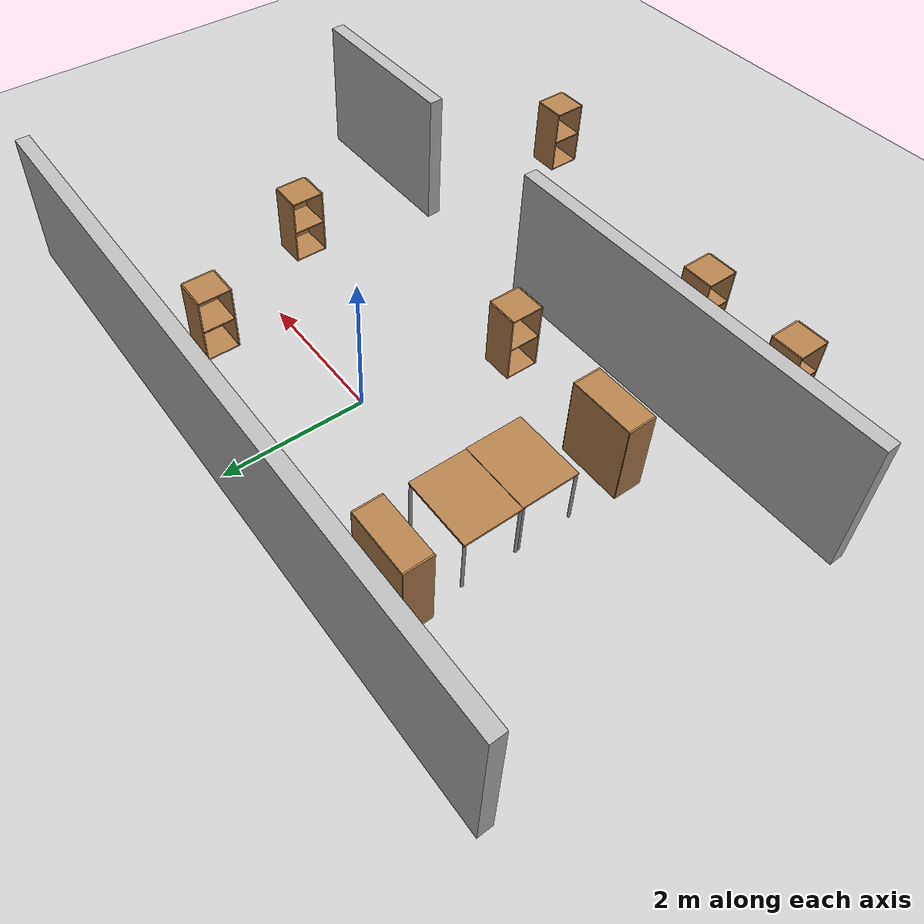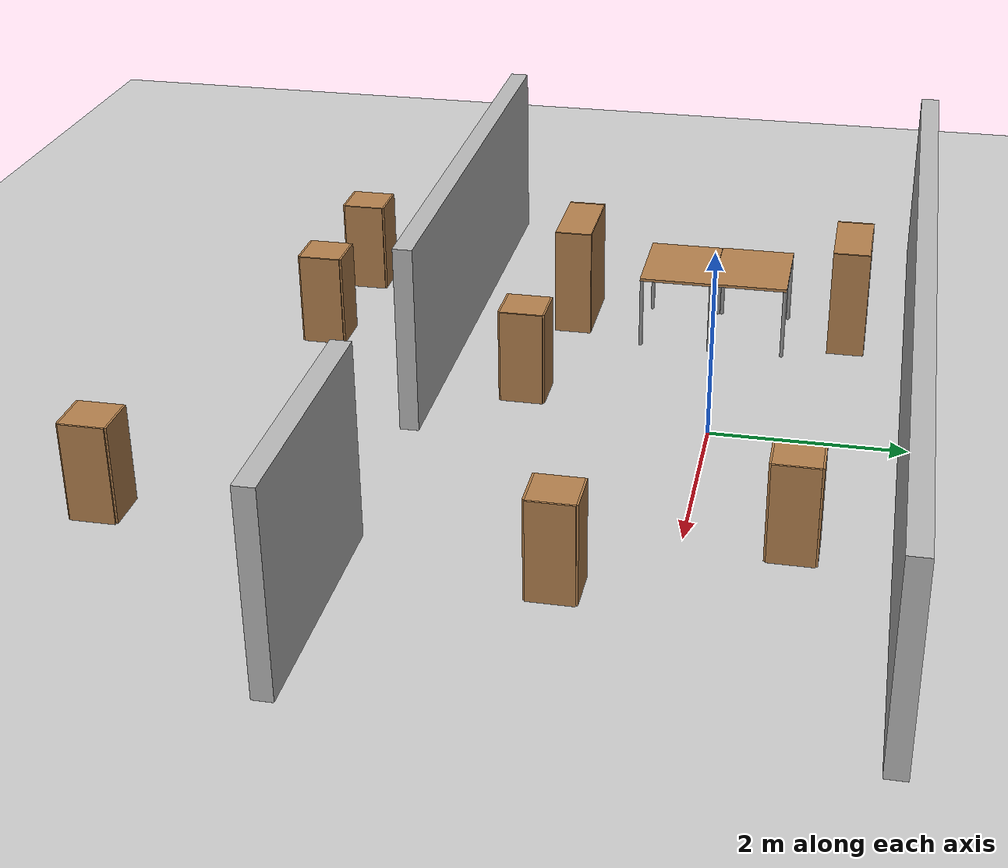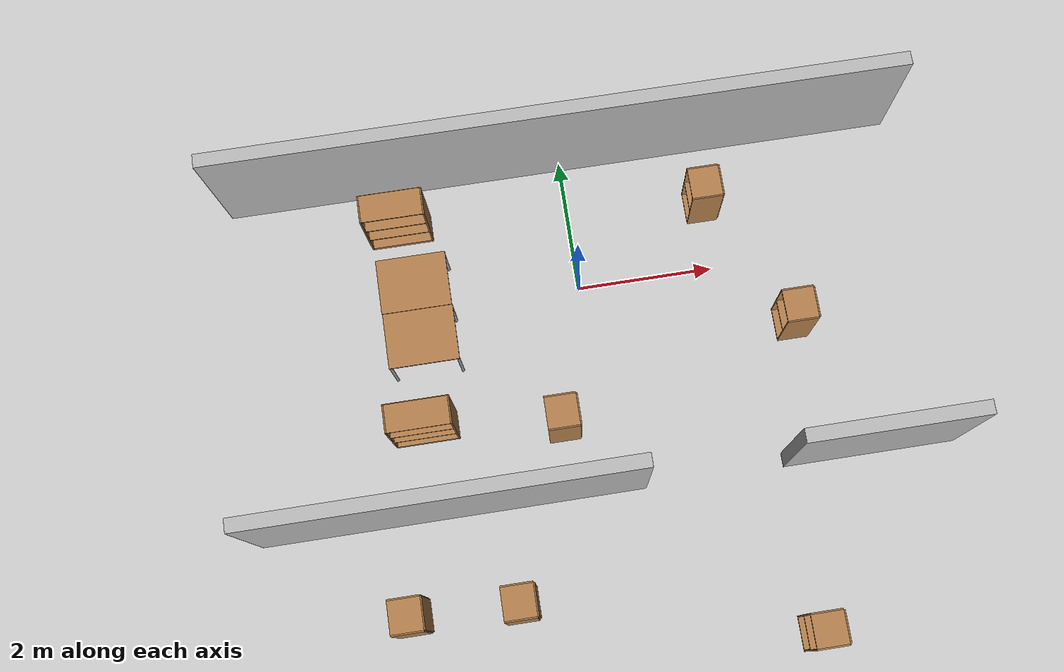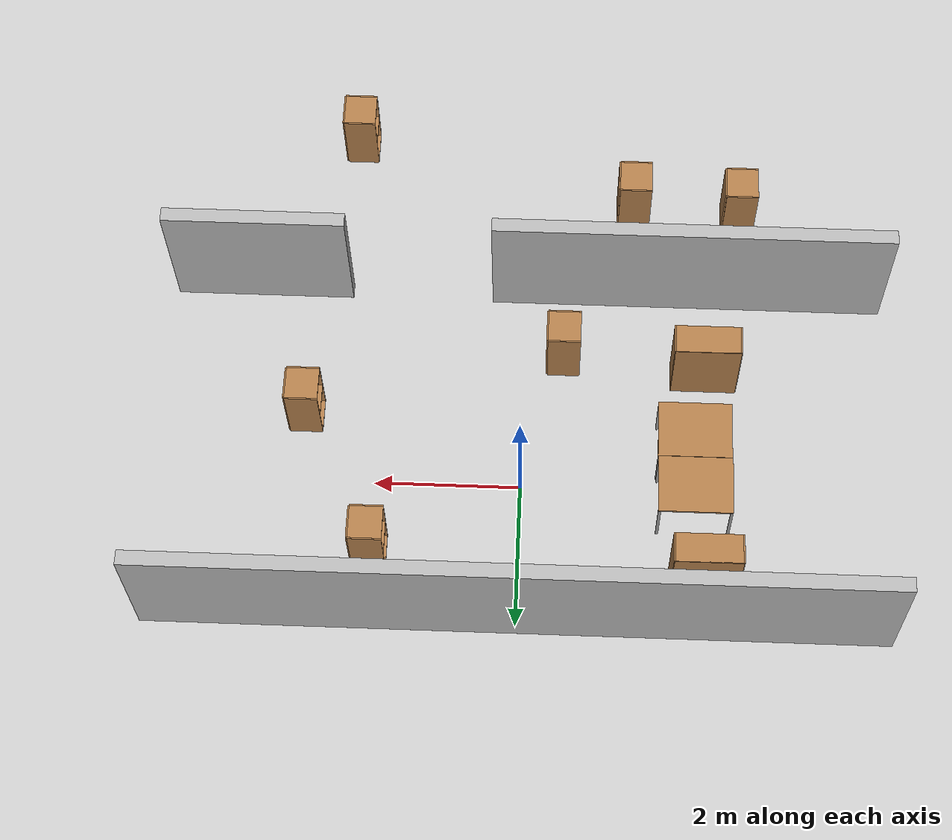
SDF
<sdf version="1.6">
 <world name="default">
  <model name="ground_plane">
   <static>1</static>
   <link name="link">
    <collision name="collision">
     <geometry><plane><normal>0 0 1</normal><size>100 100</size></plane></geometry>
     <surface><friction><ode><mu>100</mu><mu2>50</mu2></ode></friction></surface>
    </collision>
    <visual name="visual">
     <cast_shadows>0</cast_shadows>
     <geometry><plane><normal>0 0 1</normal><size>100 100</size></plane></geometry>
     <material>
      <script><uri>file://media/materials/scripts/gazebo.material</uri><name>Gazebo/Grey</name></script>
     </material>
    </visual>
    <velocity_decay><linear>0</linear><angular>0</angular></velocity_decay>
   </link>
  </model>
  <model name="wall_2_model">
   <pose>0 2 1 0 -0 0</pose>
   <static>1</static>
   <link name="wall_2_body">
    <inertial>
     <mass>1</mass>
     <inertia><ixx>1</ixx><ixy>0</ixy><ixz>0</ixz><iyy>1</iyy><iyz>0</iyz><izz>1</izz></inertia>
    </inertial>
    <collision name="collision"><geometry><box><size>10 0.2 2</size></box></geometry></collision>
    <visual name="visual"><geometry><box><size>10 0.2 2</size></box></geometry></visual>
    <velocity_decay><linear>0</linear><angular>0</angular></velocity_decay>
   </link>
  </model>
  <model name="wall_5_model">
   <pose>-2.25 -3 1 0 -0 0</pose>
   <static>1</static>
   <link name="wall_5_body">
    <inertial>
     <mass>1</mass>
     <inertia><ixx>1</ixx><ixy>0</ixy><ixz>0</ixz><iyy>1</iyy><iyz>0</iyz><izz>1</izz></inertia>
    </inertial>
    <collision name="collision"><geometry><box><size>5.5 0.2 2</size></box></geometry></collision>
    <visual name="visual"><geometry><box><size>5.5 0.2 2</size></box></geometry></visual>
    <velocity_decay><linear>0</linear><angular>0</angular></velocity_decay>
   </link>
  </model>
  <model name="wall_6_model">
   <pose>3.75 -3 1 0 -0 0</pose>
   <static>1</static>
   <link name="wall_6_body">
    <inertial>
     <mass>1</mass>
     <inertia><ixx>1</ixx><ixy>0</ixy><ixz>0</ixz><iyy>1</iyy><iyz>0</iyz><izz>1</izz></inertia>
    </inertial>
    <collision name="collision"><geometry><box><size>2.5 0.2 2</size></box></geometry></collision>
    <visual name="visual"><geometry><box><size>2.5 0.2 2</size></box></geometry></visual>
    <velocity_decay><linear>0</linear><angular>0</angular></velocity_decay>
   </link>
  </model>
  <model name="cabinet">
   <static>1</static>
   <link name="cabinet_bottom_plate">
    <inertial>
     <pose>0 0 -1 0 -0 0</pose>
     <inertia><ixx>2.05</ixx><ixy>0</ixy><ixz>0</ixz><iyy>2.05</iyy><iyz>0</iyz><izz>2.05</izz></inertia>
     <mass>25</mass>
    </inertial>
    <collision name="cabinet_bottom_plate_geom">
     <pose>0 0 0.01 0 -0 0</pose>
     <geometry><box><size>0.45 0.45 0.02</size></box></geometry>
    </collision>
    <visual name="cabinet_bottom_plate_geom_visual">
     <pose>0 0 0.01 0 -0 0</pose>
     <geometry><box><size>0.45 0.45 0.02</size></box></geometry>
     <material>
      <script><uri>file://media/materials/scripts/gazebo.material</uri><name>Gazebo/Wood</name></script>
     </material>
    </visual>
    <collision name="cabinet_bottom_plate_geom_cabinet_back_plate">
     <pose>0.235 0 0.51 0 -0 0</pose>
     <geometry><box><size>0.02 0.45 1.02</size></box></geometry>
    </collision>
    <visual name="cabinet_bottom_plate_geom_cabinet_back_plate_visual">
     <pose>0.235 0 0.51 0 -0 0</pose>
     <geometry><box><size>0.02 0.45 1.02</size></box></geometry>
     <material>
      <script><uri>file://media/materials/scripts/gazebo.material</uri><name>Gazebo/Wood</name></script>
     </material>
    </visual>
    <collision name="cabinet_bottom_plate_geom_cabinet_left_plate">
     <pose>0 0.235 0.51 0 -0 0</pose>
     <geometry><box><size>0.45 0.02 1.02</size></box></geometry>
    </collision>
    <visual name="cabinet_bottom_plate_geom_cabinet_left_plate_visual">
     <pose>0 0.235 0.51 0 -0 0</pose>
     <geometry><box><size>0.45 0.02 1.02</size></box></geometry>
     <material>
      <script><uri>file://media/materials/scripts/gazebo.material</uri><name>Gazebo/Wood</name></script>
     </material>
    </visual>
    <collision name="cabinet_bottom_plate_geom_cabinet_middle_plate">
     <pose>0 0 0.51 0 -0 0</pose>
     <geometry><box><size>0.45 0.45 0.02</size></box></geometry>
    </collision>
    <visual name="cabinet_bottom_plate_geom_cabinet_middle_plate_visual">
     <pose>0 0 0.51 0 -0 0</pose>
     <geometry><box><size>0.45 0.45 0.02</size></box></geometry>
     <material>
      <script><uri>file://media/materials/scripts/gazebo.material</uri><name>Gazebo/Wood</name></script>
     </material>
    </visual>
    <collision name="cabinet_bottom_plate_geom_cabinet_right_plate">
     <pose>0 -0.235 0.51 0 -0 0</pose>
     <geometry><box><size>0.45 0.02 1.02</size></box></geometry>
    </collision>
    <visual name="cabinet_bottom_plate_geom_cabinet_right_plate_visual">
     <pose>0 -0.235 0.51 0 -0 0</pose>
     <geometry><box><size>0.45 0.02 1.02</size></box></geometry>
     <material>
      <script><uri>file://media/materials/scripts/gazebo.material</uri><name>Gazebo/Wood</name></script>
     </material>
    </visual>
    <collision name="cabinet_bottom_plate_geom_cabinet_top_plate">
     <pose>0 0 1.01 0 -0 0</pose>
     <geometry><box><size>0.45 0.45 0.02</size></box></geometry>
    </collision>
    <visual name="cabinet_bottom_plate_geom_cabinet_top_plate_visual">
     <pose>0 0 1.01 0 -0 0</pose>
     <geometry><box><size>0.45 0.45 0.02</size></box></geometry>
     <material>
      <script><uri>file://media/materials/scripts/gazebo.material</uri><name>Gazebo/Wood</name></script>
     </material>
    </visual>
    <velocity_decay><linear>0</linear><angular>0</angular></velocity_decay>
   </link>
   <pose>2 1 0 0 -0 0</pose>
  </model>
  <model name="cabinet_0">
   <static>1</static>
   <link name="cabinet_bottom_plate">
    <inertial>
     <pose>0 0 -1 0 -0 0</pose>
     <inertia><ixx>2.05</ixx><ixy>0</ixy><ixz>0</ixz><iyy>2.05</iyy><iyz>0</iyz><izz>2.05</izz></inertia>
     <mass>25</mass>
    </inertial>
    <collision name="cabinet_bottom_plate_geom">
     <pose>0 0 0.01 0 -0 0</pose>
     <geometry><box><size>0.45 0.45 0.02</size></box></geometry>
    </collision>
    <visual name="cabinet_bottom_plate_geom_visual">
     <pose>0 0 0.01 0 -0 0</pose>
     <geometry><box><size>0.45 0.45 0.02</size></box></geometry>
     <material>
      <script><uri>file://media/materials/scripts/gazebo.material</uri><name>Gazebo/Wood</name></script>
     </material>
    </visual>
    <collision name="cabinet_bottom_plate_geom_cabinet_back_plate">
     <pose>0.235 0 0.51 0 -0 0</pose>
     <geometry><box><size>0.02 0.45 1.02</size></box></geometry>
    </collision>
    <visual name="cabinet_bottom_plate_geom_cabinet_back_plate_visual">
     <pose>0.235 0 0.51 0 -0 0</pose>
     <geometry><box><size>0.02 0.45 1.02</size></box></geometry>
     <material>
      <script><uri>file://media/materials/scripts/gazebo.material</uri><name>Gazebo/Wood</name></script>
     </material>
    </visual>
    <collision name="cabinet_bottom_plate_geom_cabinet_left_plate">
     <pose>0 0.235 0.51 0 -0 0</pose>
     <geometry><box><size>0.45 0.02 1.02</size></box></geometry>
    </collision>
    <visual name="cabinet_bottom_plate_geom_cabinet_left_plate_visual">
     <pose>0 0.235 0.51 0 -0 0</pose>
     <geometry><box><size>0.45 0.02 1.02</size></box></geometry>
     <material>
      <script><uri>file://media/materials/scripts/gazebo.material</uri><name>Gazebo/Wood</name></script>
     </material>
    </visual>
    <collision name="cabinet_bottom_plate_geom_cabinet_middle_plate">
     <pose>0 0 0.51 0 -0 0</pose>
     <geometry><box><size>0.45 0.45 0.02</size></box></geometry>
    </collision>
    <visual name="cabinet_bottom_plate_geom_cabinet_middle_plate_visual">
     <pose>0 0 0.51 0 -0 0</pose>
     <geometry><box><size>0.45 0.45 0.02</size></box></geometry>
     <material>
      <script><uri>file://media/materials/scripts/gazebo.material</uri><name>Gazebo/Wood</name></script>
     </material>
    </visual>
    <collision name="cabinet_bottom_plate_geom_cabinet_right_plate">
     <pose>0 -0.235 0.51 0 -0 0</pose>
     <geometry><box><size>0.45 0.02 1.02</size></box></geometry>
    </collision>
    <visual name="cabinet_bottom_plate_geom_cabinet_right_plate_visual">
     <pose>0 -0.235 0.51 0 -0 0</pose>
     <geometry><box><size>0.45 0.02 1.02</size></box></geometry>
     <material>
      <script><uri>file://media/materials/scripts/gazebo.material</uri><name>Gazebo/Wood</name></script>
     </material>
    </visual>
    <collision name="cabinet_bottom_plate_geom_cabinet_top_plate">
     <pose>0 0 1.01 0 -0 0</pose>
     <geometry><box><size>0.45 0.45 0.02</size></box></geometry>
    </collision>
    <visual name="cabinet_bottom_plate_geom_cabinet_top_plate_visual">
     <pose>0 0 1.01 0 -0 0</pose>
     <geometry><box><size>0.45 0.45 0.02</size></box></geometry>
     <material>
      <script><uri>file://media/materials/scripts/gazebo.material</uri><name>Gazebo/Wood</name></script>
     </material>
    </visual>
    <velocity_decay><linear>0</linear><angular>0</angular></velocity_decay>
   </link>
   <pose>2.51573 -5.43949 0 0 -0 0</pose>
  </model>
  <model name="bookshelf_0">
   <static>1</static>
   <link name="link">
    <inertial><mass>1</mass></inertial>
    <collision name="back">
     <pose>0 0.005 0.6 0 -0 0</pose>
     <geometry><box><size>0.9 0.01 1.2</size></box></geometry>
    </collision>
    <visual name="visual1">
     <pose>0 0.005 0.6 0 -0 0</pose>
     <geometry><box><size>0.9 0.01 1.2</size></box></geometry>
     <material>
      <script><uri>file://media/materials/scripts/gazebo.material</uri><name>Gazebo/Wood</name></script>
     </material>
    </visual>
    <collision name="left_side">
     <pose>0.45 -0.195 0.6 0 -0 0</pose>
     <geometry><box><size>0.02 0.4 1.2</size></box></geometry>
    </collision>
    <visual name="visual2">
     <pose>0.45 -0.195 0.6 0 -0 0</pose>
     <geometry><box><size>0.02 0.4 1.2</size></box></geometry>
     <material>
      <script><uri>file://media/materials/scripts/gazebo.material</uri><name>Gazebo/Wood</name></script>
     </material>
    </visual>
    <collision name="right_side">
     <pose>-0.45 -0.195 0.6 0 -0 0</pose>
     <geometry><box><size>0.02 0.4 1.2</size></box></geometry>
    </collision>
    <visual name="visual3">
     <pose>-0.45 -0.195 0.6 0 -0 0</pose>
     <geometry><box><size>0.02 0.4 1.2</size></box></geometry>
     <material>
      <script><uri>file://media/materials/scripts/gazebo.material</uri><name>Gazebo/Wood</name></script>
     </material>
    </visual>
    <collision name="bottom">
     <pose>0 -0.195 0.03 0 -0 0</pose>
     <geometry><box><size>0.88 0.4 0.06</size></box></geometry>
    </collision>
    <visual name="visual4">
     <pose>0 -0.195 0.03 0 -0 0</pose>
     <geometry><box><size>0.88 0.4 0.06</size></box></geometry>
     <material>
      <script><uri>file://media/materials/scripts/gazebo.material</uri><name>Gazebo/Wood</name></script>
     </material>
    </visual>
    <collision name="top">
     <pose>0 -0.195 1.19 0 -0 0</pose>
     <geometry><box><size>0.88 0.4 0.02</size></box></geometry>
    </collision>
    <visual name="visual5">
     <pose>0 -0.195 1.19 0 -0 0</pose>
     <geometry><box><size>0.88 0.4 0.02</size></box></geometry>
     <material>
      <script><uri>file://media/materials/scripts/gazebo.material</uri><name>Gazebo/Wood</name></script>
     </material>
    </visual>
    <collision name="low_shelf">
     <pose>0 -0.195 0.43 0 -0 0</pose>
     <geometry><box><size>0.88 0.4 0.02</size></box></geometry>
    </collision>
    <visual name="visual6">
     <pose>0 -0.195 0.43 0 -0 0</pose>
     <geometry><box><size>0.88 0.4 0.02</size></box></geometry>
     <material>
      <script><uri>file://media/materials/scripts/gazebo.material</uri><name>Gazebo/Wood</name></script>
     </material>
    </visual>
    <collision name="high_shelf">
     <pose>0 -0.195 0.8 0 -0 0</pose>
     <geometry><box><size>0.88 0.4 0.02</size></box></geometry>
    </collision>
    <visual name="visual7">
     <pose>0 -0.195 0.8 0 -0 0</pose>
     <geometry><box><size>0.88 0.4 0.02</size></box></geometry>
     <material>
      <script><uri>file://media/materials/scripts/gazebo.material</uri><name>Gazebo/Wood</name></script>
     </material>
    </visual>
    <velocity_decay><linear>0</linear><angular>0</angular></velocity_decay>
   </link>
   <pose>-2.49657 -1.57894 0 0 -0 0</pose>
  </model>
  <model name="bookshelf_1">
   <static>1</static>
   <link name="link">
    <inertial><mass>1</mass></inertial>
    <collision name="back">
     <pose>0 0.005 0.6 0 -0 0</pose>
     <geometry><box><size>0.9 0.01 1.2</size></box></geometry>
    </collision>
    <visual name="visual1">
     <pose>0 0.005 0.6 0 -0 0</pose>
     <geometry><box><size>0.9 0.01 1.2</size></box></geometry>
     <material>
      <script><uri>file://media/materials/scripts/gazebo.material</uri><name>Gazebo/Wood</name></script>
     </material>
    </visual>
    <collision name="left_side">
     <pose>0.45 -0.195 0.6 0 -0 0</pose>
     <geometry><box><size>0.02 0.4 1.2</size></box></geometry>
    </collision>
    <visual name="visual2">
     <pose>0.45 -0.195 0.6 0 -0 0</pose>
     <geometry><box><size>0.02 0.4 1.2</size></box></geometry>
     <material>
      <script><uri>file://media/materials/scripts/gazebo.material</uri><name>Gazebo/Wood</name></script>
     </material>
    </visual>
    <collision name="right_side">
     <pose>-0.45 -0.195 0.6 0 -0 0</pose>
     <geometry><box><size>0.02 0.4 1.2</size></box></geometry>
    </collision>
    <visual name="visual3">
     <pose>-0.45 -0.195 0.6 0 -0 0</pose>
     <geometry><box><size>0.02 0.4 1.2</size></box></geometry>
     <material>
      <script><uri>file://media/materials/scripts/gazebo.material</uri><name>Gazebo/Wood</name></script>
     </material>
    </visual>
    <collision name="bottom">
     <pose>0 -0.195 0.03 0 -0 0</pose>
     <geometry><box><size>0.88 0.4 0.06</size></box></geometry>
    </collision>
    <visual name="visual4">
     <pose>0 -0.195 0.03 0 -0 0</pose>
     <geometry><box><size>0.88 0.4 0.06</size></box></geometry>
     <material>
      <script><uri>file://media/materials/scripts/gazebo.material</uri><name>Gazebo/Wood</name></script>
     </material>
    </visual>
    <collision name="top">
     <pose>0 -0.195 1.19 0 -0 0</pose>
     <geometry><box><size>0.88 0.4 0.02</size></box></geometry>
    </collision>
    <visual name="visual5">
     <pose>0 -0.195 1.19 0 -0 0</pose>
     <geometry><box><size>0.88 0.4 0.02</size></box></geometry>
     <material>
      <script><uri>file://media/materials/scripts/gazebo.material</uri><name>Gazebo/Wood</name></script>
     </material>
    </visual>
    <collision name="low_shelf">
     <pose>0 -0.195 0.43 0 -0 0</pose>
     <geometry><box><size>0.88 0.4 0.02</size></box></geometry>
    </collision>
    <visual name="visual6">
     <pose>0 -0.195 0.43 0 -0 0</pose>
     <geometry><box><size>0.88 0.4 0.02</size></box></geometry>
     <material>
      <script><uri>file://media/materials/scripts/gazebo.material</uri><name>Gazebo/Wood</name></script>
     </material>
    </visual>
    <collision name="high_shelf">
     <pose>0 -0.195 0.8 0 -0 0</pose>
     <geometry><box><size>0.88 0.4 0.02</size></box></geometry>
    </collision>
    <visual name="visual7">
     <pose>0 -0.195 0.8 0 -0 0</pose>
     <geometry><box><size>0.88 0.4 0.02</size></box></geometry>
     <material>
      <script><uri>file://media/materials/scripts/gazebo.material</uri><name>Gazebo/Wood</name></script>
     </material>
    </visual>
    <velocity_decay><linear>0</linear><angular>0</angular></velocity_decay>
   </link>
   <pose>-2.49816 1.46785 0 0 -0 0</pose>
  </model>
  <model name="cabinet_1">
   <static>1</static>
   <link name="cabinet_bottom_plate">
    <inertial>
     <pose>0 0 -1 0 -0 0</pose>
     <inertia><ixx>2.05</ixx><ixy>0</ixy><ixz>0</ixz><iyy>2.05</iyy><iyz>0</iyz><izz>2.05</izz></inertia>
     <mass>25</mass>
    </inertial>
    <collision name="cabinet_bottom_plate_geom">
     <pose>0 0 0.01 0 -0 0</pose>
     <geometry><box><size>0.45 0.45 0.02</size></box></geometry>
    </collision>
    <visual name="cabinet_bottom_plate_geom_visual">
     <pose>0 0 0.01 0 -0 0</pose>
     <geometry><box><size>0.45 0.45 0.02</size></box></geometry>
     <material>
      <script><uri>file://media/materials/scripts/gazebo.material</uri><name>Gazebo/Wood</name></script>
     </material>
    </visual>
    <collision name="cabinet_bottom_plate_geom_cabinet_back_plate">
     <pose>0.235 0 0.51 0 -0 0</pose>
     <geometry><box><size>0.02 0.45 1.02</size></box></geometry>
    </collision>
    <visual name="cabinet_bottom_plate_geom_cabinet_back_plate_visual">
     <pose>0.235 0 0.51 0 -0 0</pose>
     <geometry><box><size>0.02 0.45 1.02</size></box></geometry>
     <material>
      <script><uri>file://media/materials/scripts/gazebo.material</uri><name>Gazebo/Wood</name></script>
     </material>
    </visual>
    <collision name="cabinet_bottom_plate_geom_cabinet_left_plate">
     <pose>0 0.235 0.51 0 -0 0</pose>
     <geometry><box><size>0.45 0.02 1.02</size></box></geometry>
    </collision>
    <visual name="cabinet_bottom_plate_geom_cabinet_left_plate_visual">
     <pose>0 0.235 0.51 0 -0 0</pose>
     <geometry><box><size>0.45 0.02 1.02</size></box></geometry>
     <material>
      <script><uri>file://media/materials/scripts/gazebo.material</uri><name>Gazebo/Wood</name></script>
     </material>
    </visual>
    <collision name="cabinet_bottom_plate_geom_cabinet_middle_plate">
     <pose>0 0 0.51 0 -0 0</pose>
     <geometry><box><size>0.45 0.45 0.02</size></box></geometry>
    </collision>
    <visual name="cabinet_bottom_plate_geom_cabinet_middle_plate_visual">
     <pose>0 0 0.51 0 -0 0</pose>
     <geometry><box><size>0.45 0.45 0.02</size></box></geometry>
     <material>
      <script><uri>file://media/materials/scripts/gazebo.material</uri><name>Gazebo/Wood</name></script>
     </material>
    </visual>
    <collision name="cabinet_bottom_plate_geom_cabinet_right_plate">
     <pose>0 -0.235 0.51 0 -0 0</pose>
     <geometry><box><size>0.45 0.02 1.02</size></box></geometry>
    </collision>
    <visual name="cabinet_bottom_plate_geom_cabinet_right_plate_visual">
     <pose>0 -0.235 0.51 0 -0 0</pose>
     <geometry><box><size>0.45 0.02 1.02</size></box></geometry>
     <material>
      <script><uri>file://media/materials/scripts/gazebo.material</uri><name>Gazebo/Wood</name></script>
     </material>
    </visual>
    <collision name="cabinet_bottom_plate_geom_cabinet_top_plate">
     <pose>0 0 1.01 0 -0 0</pose>
     <geometry><box><size>0.45 0.45 0.02</size></box></geometry>
    </collision>
    <visual name="cabinet_bottom_plate_geom_cabinet_top_plate_visual">
     <pose>0 0 1.01 0 -0 0</pose>
     <geometry><box><size>0.45 0.45 0.02</size></box></geometry>
     <material>
      <script><uri>file://media/materials/scripts/gazebo.material</uri><name>Gazebo/Wood</name></script>
     </material>
    </visual>
    <velocity_decay><linear>0</linear><angular>0</angular></velocity_decay>
   </link>
   <pose>-3 -4.40005 0 0 -0 0</pose>
  </model>
  <model name="cabinet_2">
   <static>1</static>
   <link name="cabinet_bottom_plate">
    <inertial>
     <pose>0 0 -1 0 -0 0</pose>
     <inertia><ixx>2.05</ixx><ixy>0</ixy><ixz>0</ixz><iyy>2.05</iyy><iyz>0</iyz><izz>2.05</izz></inertia>
     <mass>25</mass>
    </inertial>
    <collision name="cabinet_bottom_plate_geom">
     <pose>0 0 0.01 0 -0 0</pose>
     <geometry><box><size>0.45 0.45 0.02</size></box></geometry>
    </collision>
    <visual name="cabinet_bottom_plate_geom_visual">
     <pose>0 0 0.01 0 -0 0</pose>
     <geometry><box><size>0.45 0.45 0.02</size></box></geometry>
     <material>
      <script><uri>file://media/materials/scripts/gazebo.material</uri><name>Gazebo/Wood</name></script>
     </material>
    </visual>
    <collision name="cabinet_bottom_plate_geom_cabinet_back_plate">
     <pose>0.235 0 0.51 0 -0 0</pose>
     <geometry><box><size>0.02 0.45 1.02</size></box></geometry>
    </collision>
    <visual name="cabinet_bottom_plate_geom_cabinet_back_plate_visual">
     <pose>0.235 0 0.51 0 -0 0</pose>
     <geometry><box><size>0.02 0.45 1.02</size></box></geometry>
     <material>
      <script><uri>file://media/materials/scripts/gazebo.material</uri><name>Gazebo/Wood</name></script>
     </material>
    </visual>
    <collision name="cabinet_bottom_plate_geom_cabinet_left_plate">
     <pose>0 0.235 0.51 0 -0 0</pose>
     <geometry><box><size>0.45 0.02 1.02</size></box></geometry>
    </collision>
    <visual name="cabinet_bottom_plate_geom_cabinet_left_plate_visual">
     <pose>0 0.235 0.51 0 -0 0</pose>
     <geometry><box><size>0.45 0.02 1.02</size></box></geometry>
     <material>
      <script><uri>file://media/materials/scripts/gazebo.material</uri><name>Gazebo/Wood</name></script>
     </material>
    </visual>
    <collision name="cabinet_bottom_plate_geom_cabinet_middle_plate">
     <pose>0 0 0.51 0 -0 0</pose>
     <geometry><box><size>0.45 0.45 0.02</size></box></geometry>
    </collision>
    <visual name="cabinet_bottom_plate_geom_cabinet_middle_plate_visual">
     <pose>0 0 0.51 0 -0 0</pose>
     <geometry><box><size>0.45 0.45 0.02</size></box></geometry>
     <material>
      <script><uri>file://media/materials/scripts/gazebo.material</uri><name>Gazebo/Wood</name></script>
     </material>
    </visual>
    <collision name="cabinet_bottom_plate_geom_cabinet_right_plate">
     <pose>0 -0.235 0.51 0 -0 0</pose>
     <geometry><box><size>0.45 0.02 1.02</size></box></geometry>
    </collision>
    <visual name="cabinet_bottom_plate_geom_cabinet_right_plate_visual">
     <pose>0 -0.235 0.51 0 -0 0</pose>
     <geometry><box><size>0.45 0.02 1.02</size></box></geometry>
     <material>
      <script><uri>file://media/materials/scripts/gazebo.material</uri><name>Gazebo/Wood</name></script>
     </material>
    </visual>
    <collision name="cabinet_bottom_plate_geom_cabinet_top_plate">
     <pose>0 0 1.01 0 -0 0</pose>
     <geometry><box><size>0.45 0.45 0.02</size></box></geometry>
    </collision>
    <visual name="cabinet_bottom_plate_geom_cabinet_top_plate_visual">
     <pose>0 0 1.01 0 -0 0</pose>
     <geometry><box><size>0.45 0.45 0.02</size></box></geometry>
     <material>
      <script><uri>file://media/materials/scripts/gazebo.material</uri><name>Gazebo/Wood</name></script>
     </material>
    </visual>
    <velocity_decay><linear>0</linear><angular>0</angular></velocity_decay>
   </link>
   <pose>-1.49183 -4.45622 0 0 -0 0</pose>
  </model>
  <model name="cabinet_3">
   <static>1</static>
   <link name="cabinet_bottom_plate">
    <inertial>
     <pose>0 0 -1 0 -0 0</pose>
     <inertia><ixx>2.05</ixx><ixy>0</ixy><ixz>0</ixz><iyy>2.05</iyy><iyz>0</iyz><izz>2.05</izz></inertia>
     <mass>25</mass>
    </inertial>
    <collision name="cabinet_bottom_plate_geom">
     <pose>0 0 0.01 0 -0 0</pose>
     <geometry><box><size>0.45 0.45 0.02</size></box></geometry>
    </collision>
    <visual name="cabinet_bottom_plate_geom_visual">
     <pose>0 0 0.01 0 -0 0</pose>
     <geometry><box><size>0.45 0.45 0.02</size></box></geometry>
     <material>
      <script><uri>file://media/materials/scripts/gazebo.material</uri><name>Gazebo/Wood</name></script>
     </material>
    </visual>
    <collision name="cabinet_bottom_plate_geom_cabinet_back_plate">
     <pose>0.235 0 0.51 0 -0 0</pose>
     <geometry><box><size>0.02 0.45 1.02</size></box></geometry>
    </collision>
    <visual name="cabinet_bottom_plate_geom_cabinet_back_plate_visual">
     <pose>0.235 0 0.51 0 -0 0</pose>
     <geometry><box><size>0.02 0.45 1.02</size></box></geometry>
     <material>
      <script><uri>file://media/materials/scripts/gazebo.material</uri><name>Gazebo/Wood</name></script>
     </material>
    </visual>
    <collision name="cabinet_bottom_plate_geom_cabinet_left_plate">
     <pose>0 0.235 0.51 0 -0 0</pose>
     <geometry><box><size>0.45 0.02 1.02</size></box></geometry>
    </collision>
    <visual name="cabinet_bottom_plate_geom_cabinet_left_plate_visual">
     <pose>0 0.235 0.51 0 -0 0</pose>
     <geometry><box><size>0.45 0.02 1.02</size></box></geometry>
     <material>
      <script><uri>file://media/materials/scripts/gazebo.material</uri><name>Gazebo/Wood</name></script>
     </material>
    </visual>
    <collision name="cabinet_bottom_plate_geom_cabinet_middle_plate">
     <pose>0 0 0.51 0 -0 0</pose>
     <geometry><box><size>0.45 0.45 0.02</size></box></geometry>
    </collision>
    <visual name="cabinet_bottom_plate_geom_cabinet_middle_plate_visual">
     <pose>0 0 0.51 0 -0 0</pose>
     <geometry><box><size>0.45 0.45 0.02</size></box></geometry>
     <material>
      <script><uri>file://media/materials/scripts/gazebo.material</uri><name>Gazebo/Wood</name></script>
     </material>
    </visual>
    <collision name="cabinet_bottom_plate_geom_cabinet_right_plate">
     <pose>0 -0.235 0.51 0 -0 0</pose>
     <geometry><box><size>0.45 0.02 1.02</size></box></geometry>
    </collision>
    <visual name="cabinet_bottom_plate_geom_cabinet_right_plate_visual">
     <pose>0 -0.235 0.51 0 -0 0</pose>
     <geometry><box><size>0.45 0.02 1.02</size></box></geometry>
     <material>
      <script><uri>file://media/materials/scripts/gazebo.material</uri><name>Gazebo/Wood</name></script>
     </material>
    </visual>
    <collision name="cabinet_bottom_plate_geom_cabinet_top_plate">
     <pose>0 0 1.01 0 -0 0</pose>
     <geometry><box><size>0.45 0.45 0.02</size></box></geometry>
    </collision>
    <visual name="cabinet_bottom_plate_geom_cabinet_top_plate_visual">
     <pose>0 0 1.01 0 -0 0</pose>
     <geometry><box><size>0.45 0.45 0.02</size></box></geometry>
     <material>
      <script><uri>file://media/materials/scripts/gazebo.material</uri><name>Gazebo/Wood</name></script>
     </material>
    </visual>
    <velocity_decay><linear>0</linear><angular>0</angular></velocity_decay>
   </link>
   <pose>3 -1 0 0 -0 0</pose>
  </model>
  <model name="cabinet_4">
   <static>1</static>
   <link name="cabinet_bottom_plate">
    <inertial>
     <pose>0 0 -1 0 -0 0</pose>
     <inertia><ixx>2.05</ixx><ixy>0</ixy><ixz>0</ixz><iyy>2.05</iyy><iyz>0</iyz><izz>2.05</izz></inertia>
     <mass>25</mass>
    </inertial>
    <collision name="cabinet_bottom_plate_geom">
     <pose>0 0 0.01 0 -0 0</pose>
     <geometry><box><size>0.45 0.45 0.02</size></box></geometry>
    </collision>
    <visual name="cabinet_bottom_plate_geom_visual">
     <pose>0 0 0.01 0 -0 0</pose>
     <geometry><box><size>0.45 0.45 0.02</size></box></geometry>
     <material>
      <script><uri>file://media/materials/scripts/gazebo.material</uri><name>Gazebo/Wood</name></script>
     </material>
    </visual>
    <collision name="cabinet_bottom_plate_geom_cabinet_back_plate">
     <pose>0.235 0 0.51 0 -0 0</pose>
     <geometry><box><size>0.02 0.45 1.02</size></box></geometry>
    </collision>
    <visual name="cabinet_bottom_plate_geom_cabinet_back_plate_visual">
     <pose>0.235 0 0.51 0 -0 0</pose>
     <geometry><box><size>0.02 0.45 1.02</size></box></geometry>
     <material>
      <script><uri>file://media/materials/scripts/gazebo.material</uri><name>Gazebo/Wood</name></script>
     </material>
    </visual>
    <collision name="cabinet_bottom_plate_geom_cabinet_left_plate">
     <pose>0 0.235 0.51 0 -0 0</pose>
     <geometry><box><size>0.45 0.02 1.02</size></box></geometry>
    </collision>
    <visual name="cabinet_bottom_plate_geom_cabinet_left_plate_visual">
     <pose>0 0.235 0.51 0 -0 0</pose>
     <geometry><box><size>0.45 0.02 1.02</size></box></geometry>
     <material>
      <script><uri>file://media/materials/scripts/gazebo.material</uri><name>Gazebo/Wood</name></script>
     </material>
    </visual>
    <collision name="cabinet_bottom_plate_geom_cabinet_middle_plate">
     <pose>0 0 0.51 0 -0 0</pose>
     <geometry><box><size>0.45 0.45 0.02</size></box></geometry>
    </collision>
    <visual name="cabinet_bottom_plate_geom_cabinet_middle_plate_visual">
     <pose>0 0 0.51 0 -0 0</pose>
     <geometry><box><size>0.45 0.45 0.02</size></box></geometry>
     <material>
      <script><uri>file://media/materials/scripts/gazebo.material</uri><name>Gazebo/Wood</name></script>
     </material>
    </visual>
    <collision name="cabinet_bottom_plate_geom_cabinet_right_plate">
     <pose>0 -0.235 0.51 0 -0 0</pose>
     <geometry><box><size>0.45 0.02 1.02</size></box></geometry>
    </collision>
    <visual name="cabinet_bottom_plate_geom_cabinet_right_plate_visual">
     <pose>0 -0.235 0.51 0 -0 0</pose>
     <geometry><box><size>0.45 0.02 1.02</size></box></geometry>
     <material>
      <script><uri>file://media/materials/scripts/gazebo.material</uri><name>Gazebo/Wood</name></script>
     </material>
    </visual>
    <collision name="cabinet_bottom_plate_geom_cabinet_top_plate">
     <pose>0 0 1.01 0 -0 0</pose>
     <geometry><box><size>0.45 0.45 0.02</size></box></geometry>
    </collision>
    <visual name="cabinet_bottom_plate_geom_cabinet_top_plate_visual">
     <pose>0 0 1.01 0 -0 0</pose>
     <geometry><box><size>0.45 0.45 0.02</size></box></geometry>
     <material>
      <script><uri>file://media/materials/scripts/gazebo.material</uri><name>Gazebo/Wood</name></script>
     </material>
    </visual>
    <velocity_decay><linear>0</linear><angular>0</angular></velocity_decay>
   </link>
   <pose>-0.537023 -2 0 0 -0 0</pose>
  </model>
  <model name="table_2">
   <static>1</static>
   <link name="link">
    <collision name="surface">
     <pose>0 0 0.8 0 -0 0</pose>
     <geometry><box><size>1 0.8 0.03</size></box></geometry>
    </collision>
    <visual name="visual1">
     <pose>0 0 0.8 0 -0 0</pose>
     <geometry><box><size>1 0.8 0.03</size></box></geometry>
     <material>
      <script><uri>file://media/materials/scripts/gazebo.material</uri><name>Gazebo/Wood</name></script>
     </material>
    </visual>
    <collision name="front_left_leg">
     <pose>0.48 0.38 0.4 0 -0 0</pose>
     <geometry><cylinder><radius>0.02</radius><length>0.8</length></cylinder></geometry>
    </collision>
    <visual name="front_left_leg">
     <pose>0.48 0.38 0.4 0 -0 0</pose>
     <geometry><cylinder><radius>0.02</radius><length>0.8</length></cylinder></geometry>
     <material>
      <script><uri>file://media/materials/scripts/gazebo.material</uri><name>Gazebo/Grey</name></script>
     </material>
    </visual>
    <collision name="front_right_leg">
     <pose>0.48 -0.38 0.4 0 -0 0</pose>
     <geometry><cylinder><radius>0.02</radius><length>0.8</length></cylinder></geometry>
    </collision>
    <visual name="front_right_leg">
     <pose>0.48 -0.38 0.4 0 -0 0</pose>
     <geometry><cylinder><radius>0.02</radius><length>0.8</length></cylinder></geometry>
     <material>
      <script><uri>file://media/materials/scripts/gazebo.material</uri><name>Gazebo/Grey</name></script>
     </material>
    </visual>
    <collision name="back_right_leg">
     <pose>-0.48 -0.38 0.4 0 -0 0</pose>
     <geometry><cylinder><radius>0.02</radius><length>0.8</length></cylinder></geometry>
    </collision>
    <visual name="back_right_leg">
     <pose>-0.48 -0.38 0.4 0 -0 0</pose>
     <geometry><cylinder><radius>0.02</radius><length>0.8</length></cylinder></geometry>
     <material>
      <script><uri>file://media/materials/scripts/gazebo.material</uri><name>Gazebo/Grey</name></script>
     </material>
    </visual>
    <collision name="back_left_leg">
     <pose>-0.48 0.38 0.4 0 -0 0</pose>
     <geometry><cylinder><radius>0.02</radius><length>0.8</length></cylinder></geometry>
    </collision>
    <visual name="back_left_leg">
     <pose>-0.48 0.38 0.4 0 -0 0</pose>
     <geometry><cylinder><radius>0.02</radius><length>0.8</length></cylinder></geometry>
     <material>
      <script><uri>file://media/materials/scripts/gazebo.material</uri><name>Gazebo/Grey</name></script>
     </material>
    </visual>
    <velocity_decay><linear>0</linear><angular>0</angular></velocity_decay>
   </link>
   <pose>-2.3412 -0.593646 0 0 -0 0</pose>
  </model>
  <model name="table_3">
   <static>1</static>
   <link name="link">
    <collision name="surface">
     <pose>0 0 0.8 0 -0 0</pose>
     <geometry><box><size>1 0.8 0.03</size></box></geometry>
    </collision>
    <visual name="visual1">
     <pose>0 0 0.8 0 -0 0</pose>
     <geometry><box><size>1 0.8 0.03</size></box></geometry>
     <material>
      <script><uri>file://media/materials/scripts/gazebo.material</uri><name>Gazebo/Wood</name></script>
     </material>
    </visual>
    <collision name="front_left_leg">
     <pose>0.48 0.38 0.4 0 -0 0</pose>
     <geometry><cylinder><radius>0.02</radius><length>0.8</length></cylinder></geometry>
    </collision>
    <visual name="front_left_leg">
     <pose>0.48 0.38 0.4 0 -0 0</pose>
     <geometry><cylinder><radius>0.02</radius><length>0.8</length></cylinder></geometry>
     <material>
      <script><uri>file://media/materials/scripts/gazebo.material</uri><name>Gazebo/Grey</name></script>
     </material>
    </visual>
    <collision name="front_right_leg">
     <pose>0.48 -0.38 0.4 0 -0 0</pose>
     <geometry><cylinder><radius>0.02</radius><length>0.8</length></cylinder></geometry>
    </collision>
    <visual name="front_right_leg">
     <pose>0.48 -0.38 0.4 0 -0 0</pose>
     <geometry><cylinder><radius>0.02</radius><length>0.8</length></cylinder></geometry>
     <material>
      <script><uri>file://media/materials/scripts/gazebo.material</uri><name>Gazebo/Grey</name></script>
     </material>
    </visual>
    <collision name="back_right_leg">
     <pose>-0.48 -0.38 0.4 0 -0 0</pose>
     <geometry><cylinder><radius>0.02</radius><length>0.8</length></cylinder></geometry>
    </collision>
    <visual name="back_right_leg">
     <pose>-0.48 -0.38 0.4 0 -0 0</pose>
     <geometry><cylinder><radius>0.02</radius><length>0.8</length></cylinder></geometry>
     <material>
      <script><uri>file://media/materials/scripts/gazebo.material</uri><name>Gazebo/Grey</name></script>
     </material>
    </visual>
    <collision name="back_left_leg">
     <pose>-0.48 0.38 0.4 0 -0 0</pose>
     <geometry><cylinder><radius>0.02</radius><length>0.8</length></cylinder></geometry>
    </collision>
    <visual name="back_left_leg">
     <pose>-0.48 0.38 0.4 0 -0 0</pose>
     <geometry><cylinder><radius>0.02</radius><length>0.8</length></cylinder></geometry>
     <material>
      <script><uri>file://media/materials/scripts/gazebo.material</uri><name>Gazebo/Grey</name></script>
     </material>
    </visual>
    <velocity_decay><linear>0</linear><angular>0</angular></velocity_decay>
   </link>
   <pose>-2.34928 0.210425 0 0 -0 0</pose>
  </model>
 </world>
</sdf>
